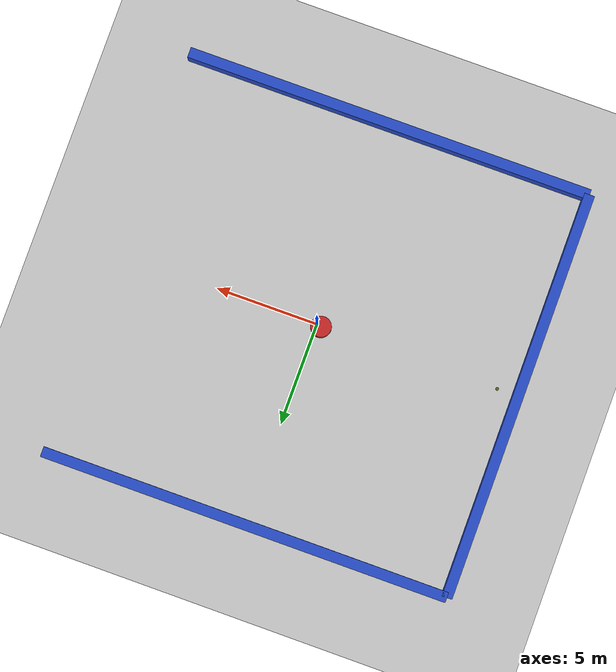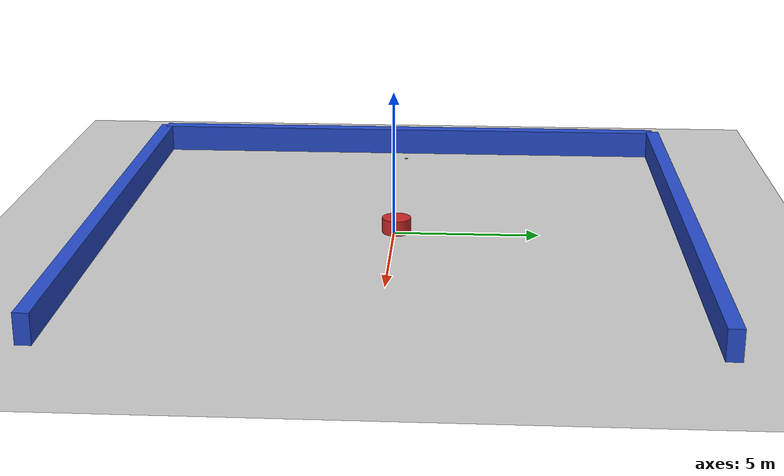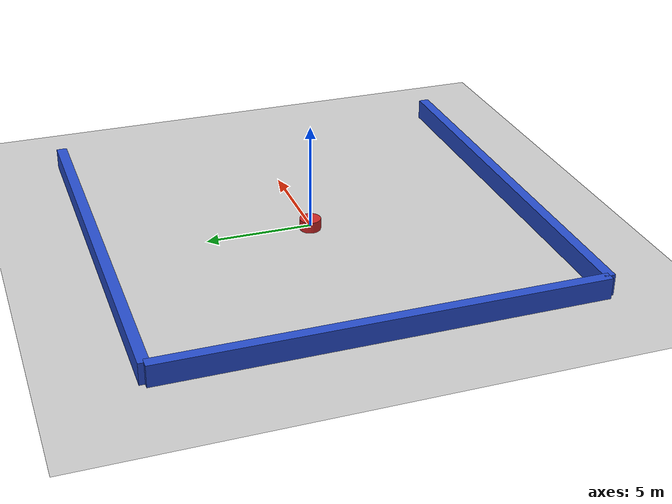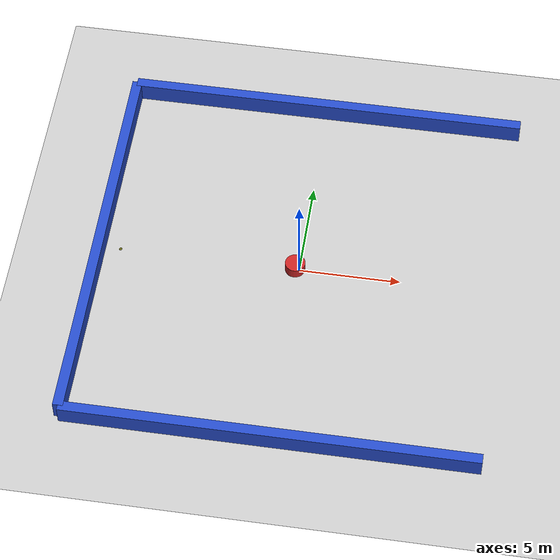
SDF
<sdf version="1.6">
   <world name="default">
      <include>
         <uri>model://ground_plane</uri>
      </include>
      <include>
         <uri>model://sun</uri>
      </include>

    <model name="mediumlibobs_51">
      <static>1</static>
      <pose frame="">-0.225000 0.075000 0.000000 0.000000 0.000000 0.000000</pose>
      <link name="link">
        <inertial>
          <mass>1</mass>
          <inertia>
            <ixx>0.145833</ixx>
            <ixy>0</ixy>
            <ixz>0</ixz>
            <iyy>0.145833</iyy>
            <iyz>0</iyz>
            <izz>0.125</izz>
          </inertia>
        </inertial>
        <collision name="collision">
           <geometry>
            <cylinder>
                <radius>0.5000</radius>
                 <length> 1 </length>
            </cylinder>
          </geometry>
           <surface>
            <contact>
              <ode />
            </contact>
            <bounce />
            <friction>
              <torsional>
                <ode />
              </torsional>
              <ode />
            </friction>
          </surface>
        </collision>
        <visual name="visual">
           <geometry>
            <cylinder>
                <radius>0.5000</radius>
                 <length> 1 </length>
            </cylinder>
          </geometry>
          <material>
            <script>
              <name>Gazebo/Red</name>
              <uri>file://media/materials/scripts/gazebo.material</uri>
            </script>
          </material>
        </visual>
        <self_collide>0</self_collide>
        <kinematic>0</kinematic>
        <gravity>1</gravity>
      </link>
      <plugin name="mediumlibobs_51" filename="mediumlibobs_51.so" />
    </model>

    <model name="hardlibobs_180">
      <static>1</static>
      <pose frame="">-0.225000 0.075000 0.000000 0.000000 0.000000 0.000000</pose>
      <link name="link">
        <inertial>
          <mass>1</mass>
          <inertia>
            <ixx>0.145833</ixx>
            <ixy>0</ixy>
            <ixz>0</ixz>
            <iyy>0.145833</iyy>
            <iyz>0</iyz>
            <izz>0.125</izz>
          </inertia>
        </inertial>
        <collision name="collision">
           <geometry>
            <cylinder>
                <radius>0.5000</radius>
                 <length> 1 </length>
            </cylinder>
          </geometry>
           <surface>
            <contact>
              <ode />
            </contact>
            <bounce />
            <friction>
              <torsional>
                <ode />
              </torsional>
              <ode />
            </friction>
          </surface>
        </collision>
        <visual name="visual">
           <geometry>
            <cylinder>
                <radius>0.5000</radius>
                 <length> 1 </length>
            </cylinder>
          </geometry>
          <material>
            <script>
              <name>Gazebo/Red</name>
              <uri>file://media/materials/scripts/gazebo.material</uri>
            </script>
          </material>
        </visual>
        <self_collide>0</self_collide>
        <kinematic>0</kinematic>
        <gravity>1</gravity>
      </link>
      <plugin name="hardlibobs_180" filename="hardlibobs_180.so" />
    </model>

    <model name="mediumlibobs_144">
      <static>1</static>
      <pose frame="">-0.225000 0.075000 0.000000 0.000000 0.000000 0.000000</pose>
      <link name="link">
        <inertial>
          <mass>1</mass>
          <inertia>
            <ixx>0.145833</ixx>
            <ixy>0</ixy>
            <ixz>0</ixz>
            <iyy>0.145833</iyy>
            <iyz>0</iyz>
            <izz>0.125</izz>
          </inertia>
        </inertial>
        <collision name="collision">
           <geometry>
            <cylinder>
                <radius>0.5000</radius>
                 <length> 1 </length>
            </cylinder>
          </geometry>
           <surface>
            <contact>
              <ode />
            </contact>
            <bounce />
            <friction>
              <torsional>
                <ode />
              </torsional>
              <ode />
            </friction>
          </surface>
        </collision>
        <visual name="visual">
           <geometry>
            <cylinder>
                <radius>0.5000</radius>
                 <length> 1 </length>
            </cylinder>
          </geometry>
          <material>
            <script>
              <name>Gazebo/Red</name>
              <uri>file://media/materials/scripts/gazebo.material</uri>
            </script>
          </material>
        </visual>
        <self_collide>0</self_collide>
        <kinematic>0</kinematic>
        <gravity>1</gravity>
      </link>
      <plugin name="mediumlibobs_144" filename="mediumlibobs_144.so" />
    </model>

    <model name="mediumlibobs_184">
      <static>1</static>
      <pose frame="">-0.225000 0.075000 0.000000 0.000000 0.000000 0.000000</pose>
      <link name="link">
        <inertial>
          <mass>1</mass>
          <inertia>
            <ixx>0.145833</ixx>
            <ixy>0</ixy>
            <ixz>0</ixz>
            <iyy>0.145833</iyy>
            <iyz>0</iyz>
            <izz>0.125</izz>
          </inertia>
        </inertial>
        <collision name="collision">
           <geometry>
            <cylinder>
                <radius>0.5000</radius>
                 <length> 1 </length>
            </cylinder>
          </geometry>
           <surface>
            <contact>
              <ode />
            </contact>
            <bounce />
            <friction>
              <torsional>
                <ode />
              </torsional>
              <ode />
            </friction>
          </surface>
        </collision>
        <visual name="visual">
           <geometry>
            <cylinder>
                <radius>0.5000</radius>
                 <length> 1 </length>
            </cylinder>
          </geometry>
          <material>
            <script>
              <name>Gazebo/Red</name>
              <uri>file://media/materials/scripts/gazebo.material</uri>
            </script>
          </material>
        </visual>
        <self_collide>0</self_collide>
        <kinematic>0</kinematic>
        <gravity>1</gravity>
      </link>
      <plugin name="mediumlibobs_184" filename="mediumlibobs_184.so" />
    </model>

    <model name="hardlibobs_151">
      <static>1</static>
      <pose frame="">-0.225000 0.075000 0.000000 0.000000 0.000000 0.000000</pose>
      <link name="link">
        <inertial>
          <mass>1</mass>
          <inertia>
            <ixx>0.145833</ixx>
            <ixy>0</ixy>
            <ixz>0</ixz>
            <iyy>0.145833</iyy>
            <iyz>0</iyz>
            <izz>0.125</izz>
          </inertia>
        </inertial>
        <collision name="collision">
           <geometry>
            <cylinder>
                <radius>0.5000</radius>
                 <length> 1 </length>
            </cylinder>
          </geometry>
           <surface>
            <contact>
              <ode />
            </contact>
            <bounce />
            <friction>
              <torsional>
                <ode />
              </torsional>
              <ode />
            </friction>
          </surface>
        </collision>
        <visual name="visual">
           <geometry>
            <cylinder>
                <radius>0.5000</radius>
                 <length> 1 </length>
            </cylinder>
          </geometry>
          <material>
            <script>
              <name>Gazebo/Red</name>
              <uri>file://media/materials/scripts/gazebo.material</uri>
            </script>
          </material>
        </visual>
        <self_collide>0</self_collide>
        <kinematic>0</kinematic>
        <gravity>1</gravity>
      </link>
      <plugin name="hardlibobs_151" filename="hardlibobs_151.so" />
    </model>

    <model name="mediumlibobs_130">
      <static>1</static>
      <pose frame="">-0.225000 0.075000 0.000000 0.000000 0.000000 0.000000</pose>
      <link name="link">
        <inertial>
          <mass>1</mass>
          <inertia>
            <ixx>0.145833</ixx>
            <ixy>0</ixy>
            <ixz>0</ixz>
            <iyy>0.145833</iyy>
            <iyz>0</iyz>
            <izz>0.125</izz>
          </inertia>
        </inertial>
        <collision name="collision">
           <geometry>
            <cylinder>
                <radius>0.5000</radius>
                 <length> 1 </length>
            </cylinder>
          </geometry>
           <surface>
            <contact>
              <ode />
            </contact>
            <bounce />
            <friction>
              <torsional>
                <ode />
              </torsional>
              <ode />
            </friction>
          </surface>
        </collision>
        <visual name="visual">
           <geometry>
            <cylinder>
                <radius>0.5000</radius>
                 <length> 1 </length>
            </cylinder>
          </geometry>
          <material>
            <script>
              <name>Gazebo/Red</name>
              <uri>file://media/materials/scripts/gazebo.material</uri>
            </script>
          </material>
        </visual>
        <self_collide>0</self_collide>
        <kinematic>0</kinematic>
        <gravity>1</gravity>
      </link>
      <plugin name="mediumlibobs_130" filename="mediumlibobs_130.so" />
    </model>

    <model name="mediumlibobs_185">
      <static>1</static>
      <pose frame="">-0.225000 0.075000 0.000000 0.000000 0.000000 0.000000</pose>
      <link name="link">
        <inertial>
          <mass>1</mass>
          <inertia>
            <ixx>0.145833</ixx>
            <ixy>0</ixy>
            <ixz>0</ixz>
            <iyy>0.145833</iyy>
            <iyz>0</iyz>
            <izz>0.125</izz>
          </inertia>
        </inertial>
        <collision name="collision">
           <geometry>
            <cylinder>
                <radius>0.5000</radius>
                 <length> 1 </length>
            </cylinder>
          </geometry>
           <surface>
            <contact>
              <ode />
            </contact>
            <bounce />
            <friction>
              <torsional>
                <ode />
              </torsional>
              <ode />
            </friction>
          </surface>
        </collision>
        <visual name="visual">
           <geometry>
            <cylinder>
                <radius>0.5000</radius>
                 <length> 1 </length>
            </cylinder>
          </geometry>
          <material>
            <script>
              <name>Gazebo/Red</name>
              <uri>file://media/materials/scripts/gazebo.material</uri>
            </script>
          </material>
        </visual>
        <self_collide>0</self_collide>
        <kinematic>0</kinematic>
        <gravity>1</gravity>
      </link>
      <plugin name="mediumlibobs_185" filename="mediumlibobs_185.so" />
    </model>

    <model name="hardlibobs_34">
      <static>1</static>
      <pose frame="">-0.225000 0.075000 0.000000 0.000000 0.000000 0.000000</pose>
      <link name="link">
        <inertial>
          <mass>1</mass>
          <inertia>
            <ixx>0.145833</ixx>
            <ixy>0</ixy>
            <ixz>0</ixz>
            <iyy>0.145833</iyy>
            <iyz>0</iyz>
            <izz>0.125</izz>
          </inertia>
        </inertial>
        <collision name="collision">
           <geometry>
            <cylinder>
                <radius>0.5000</radius>
                 <length> 1 </length>
            </cylinder>
          </geometry>
           <surface>
            <contact>
              <ode />
            </contact>
            <bounce />
            <friction>
              <torsional>
                <ode />
              </torsional>
              <ode />
            </friction>
          </surface>
        </collision>
        <visual name="visual">
           <geometry>
            <cylinder>
                <radius>0.5000</radius>
                 <length> 1 </length>
            </cylinder>
          </geometry>
          <material>
            <script>
              <name>Gazebo/Red</name>
              <uri>file://media/materials/scripts/gazebo.material</uri>
            </script>
          </material>
        </visual>
        <self_collide>0</self_collide>
        <kinematic>0</kinematic>
        <gravity>1</gravity>
      </link>
      <plugin name="hardlibobs_34" filename="hardlibobs_34.so" />
    </model>

    <model name="mediumlibobs_20">
      <static>1</static>
      <pose frame="">-0.225000 0.075000 0.000000 0.000000 0.000000 0.000000</pose>
      <link name="link">
        <inertial>
          <mass>1</mass>
          <inertia>
            <ixx>0.145833</ixx>
            <ixy>0</ixy>
            <ixz>0</ixz>
            <iyy>0.145833</iyy>
            <iyz>0</iyz>
            <izz>0.125</izz>
          </inertia>
        </inertial>
        <collision name="collision">
           <geometry>
            <cylinder>
                <radius>0.5000</radius>
                 <length> 1 </length>
            </cylinder>
          </geometry>
           <surface>
            <contact>
              <ode />
            </contact>
            <bounce />
            <friction>
              <torsional>
                <ode />
              </torsional>
              <ode />
            </friction>
          </surface>
        </collision>
        <visual name="visual">
           <geometry>
            <cylinder>
                <radius>0.5000</radius>
                 <length> 1 </length>
            </cylinder>
          </geometry>
          <material>
            <script>
              <name>Gazebo/Red</name>
              <uri>file://media/materials/scripts/gazebo.material</uri>
            </script>
          </material>
        </visual>
        <self_collide>0</self_collide>
        <kinematic>0</kinematic>
        <gravity>1</gravity>
      </link>
      <plugin name="mediumlibobs_20" filename="mediumlibobs_20.so" />
    </model>

    <model name="hardlibobs_181">
      <static>1</static>
      <pose frame="">-0.225000 0.075000 0.000000 0.000000 0.000000 0.000000</pose>
      <link name="link">
        <inertial>
          <mass>1</mass>
          <inertia>
            <ixx>0.145833</ixx>
            <ixy>0</ixy>
            <ixz>0</ixz>
            <iyy>0.145833</iyy>
            <iyz>0</iyz>
            <izz>0.125</izz>
          </inertia>
        </inertial>
        <collision name="collision">
           <geometry>
            <cylinder>
                <radius>0.5000</radius>
                 <length> 1 </length>
            </cylinder>
          </geometry>
           <surface>
            <contact>
              <ode />
            </contact>
            <bounce />
            <friction>
              <torsional>
                <ode />
              </torsional>
              <ode />
            </friction>
          </surface>
        </collision>
        <visual name="visual">
           <geometry>
            <cylinder>
                <radius>0.5000</radius>
                 <length> 1 </length>
            </cylinder>
          </geometry>
          <material>
            <script>
              <name>Gazebo/Red</name>
              <uri>file://media/materials/scripts/gazebo.material</uri>
            </script>
          </material>
        </visual>
        <self_collide>0</self_collide>
        <kinematic>0</kinematic>
        <gravity>1</gravity>
      </link>
      <plugin name="hardlibobs_181" filename="hardlibobs_181.so" />
    </model>

    <model name="mediumlibobs_159">
      <static>1</static>
      <pose frame="">-0.225000 0.075000 0.000000 0.000000 0.000000 0.000000</pose>
      <link name="link">
        <inertial>
          <mass>1</mass>
          <inertia>
            <ixx>0.145833</ixx>
            <ixy>0</ixy>
            <ixz>0</ixz>
            <iyy>0.145833</iyy>
            <iyz>0</iyz>
            <izz>0.125</izz>
          </inertia>
        </inertial>
        <collision name="collision">
           <geometry>
            <cylinder>
                <radius>0.5000</radius>
                 <length> 1 </length>
            </cylinder>
          </geometry>
           <surface>
            <contact>
              <ode />
            </contact>
            <bounce />
            <friction>
              <torsional>
                <ode />
              </torsional>
              <ode />
            </friction>
          </surface>
        </collision>
        <visual name="visual">
           <geometry>
            <cylinder>
                <radius>0.5000</radius>
                 <length> 1 </length>
            </cylinder>
          </geometry>
          <material>
            <script>
              <name>Gazebo/Red</name>
              <uri>file://media/materials/scripts/gazebo.material</uri>
            </script>
          </material>
        </visual>
        <self_collide>0</self_collide>
        <kinematic>0</kinematic>
        <gravity>1</gravity>
      </link>
      <plugin name="mediumlibobs_159" filename="mediumlibobs_159.so" />
    </model>

    <model name="hardlibobs_162">
      <static>1</static>
      <pose frame="">-0.225000 0.075000 0.000000 0.000000 0.000000 0.000000</pose>
      <link name="link">
        <inertial>
          <mass>1</mass>
          <inertia>
            <ixx>0.145833</ixx>
            <ixy>0</ixy>
            <ixz>0</ixz>
            <iyy>0.145833</iyy>
            <iyz>0</iyz>
            <izz>0.125</izz>
          </inertia>
        </inertial>
        <collision name="collision">
           <geometry>
            <cylinder>
                <radius>0.5000</radius>
                 <length> 1 </length>
            </cylinder>
          </geometry>
           <surface>
            <contact>
              <ode />
            </contact>
            <bounce />
            <friction>
              <torsional>
                <ode />
              </torsional>
              <ode />
            </friction>
          </surface>
        </collision>
        <visual name="visual">
           <geometry>
            <cylinder>
                <radius>0.5000</radius>
                 <length> 1 </length>
            </cylinder>
          </geometry>
          <material>
            <script>
              <name>Gazebo/Red</name>
              <uri>file://media/materials/scripts/gazebo.material</uri>
            </script>
          </material>
        </visual>
        <self_collide>0</self_collide>
        <kinematic>0</kinematic>
        <gravity>1</gravity>
      </link>
      <plugin name="hardlibobs_162" filename="hardlibobs_162.so" />
    </model>

    <model name="hardlibobs_163">
      <static>1</static>
      <pose frame="">-0.225000 0.075000 0.000000 0.000000 0.000000 0.000000</pose>
      <link name="link">
        <inertial>
          <mass>1</mass>
          <inertia>
            <ixx>0.145833</ixx>
            <ixy>0</ixy>
            <ixz>0</ixz>
            <iyy>0.145833</iyy>
            <iyz>0</iyz>
            <izz>0.125</izz>
          </inertia>
        </inertial>
        <collision name="collision">
           <geometry>
            <cylinder>
                <radius>0.5000</radius>
                 <length> 1 </length>
            </cylinder>
          </geometry>
           <surface>
            <contact>
              <ode />
            </contact>
            <bounce />
            <friction>
              <torsional>
                <ode />
              </torsional>
              <ode />
            </friction>
          </surface>
        </collision>
        <visual name="visual">
           <geometry>
            <cylinder>
                <radius>0.5000</radius>
                 <length> 1 </length>
            </cylinder>
          </geometry>
          <material>
            <script>
              <name>Gazebo/Red</name>
              <uri>file://media/materials/scripts/gazebo.material</uri>
            </script>
          </material>
        </visual>
        <self_collide>0</self_collide>
        <kinematic>0</kinematic>
        <gravity>1</gravity>
      </link>
      <plugin name="hardlibobs_163" filename="hardlibobs_163.so" />
    </model>

      <model name="back_wall">
      <static>1</static>\   <pose frame="">-10 0 .5 0 0 0</pose>        <link name="box_link">

	<collision name="collision">
            <geometry>
              <box>
                <size>.5 20 1</size>
              </box>
            </geometry>
           <surface>
            <contact>
              <ode />
            </contact>
            <bounce />
            <friction>
              <torsional>
                <ode />
              </torsional>
              <ode />
            </friction>
          </surface>
        </collision>

          <visual name="visual">
            <geometry>
              <box>
                <size>.5 20 1</size>
              </box>
            </geometry>
          <material>
                 <script>
                     <name>Gazebo/Blue</name>
                         <uri>file://media/materials/scripts/gazebo.material</uri>
                         </script>
                     </material>
          </visual>
        </link>
      </model>
      <model name="top_wall">
      <static>1</static>
       <pose frame="">0 10 .5 0 0 0</pose>        <link name="box_link">

	<collision name="collision">
           <geometry>
              <box>
                <size>20 .5 1</size>
              </box>
            </geometry>
           <surface>
            <contact>
              <ode />
            </contact>
            <bounce />
            <friction>
              <torsional>
                <ode />
              </torsional>
              <ode />
            </friction>
          </surface>
        </collision>
          <visual name="visual">
            <geometry>
              <box>
                <size>20 .5 1</size>
              </box>
            </geometry>
          <material>
                 <script>
                     <name>Gazebo/Blue</name>
                         <uri>file://media/materials/scripts/gazebo.material</uri>
                         </script>
                     </material>
          </visual>
        </link>
      </model>
      <model name="bottom_wall">
      <static>1</static>
       <pose frame="">0 -10 .5 0 0 0</pose>        <link name="box_link">
	<collision name="collision">
            <geometry>
              <box>
                <size>20 .5 1</size>
              </box>
            </geometry>
           <surface>
            <contact>
              <ode />
            </contact>
            <bounce />
            <friction>
              <torsional>
                <ode />
              </torsional>
              <ode />
            </friction>
          </surface>
        </collision>
          <visual name="visual">
            <geometry>
              <box>
                <size>20 .5 1</size>
              </box>
            </geometry>
          <material>
                 <script>
                     <name>Gazebo/Blue</name>
                         <uri>file://media/materials/scripts/gazebo.material</uri>
                         </script>
                     </material>
          </visual>
        </link>
      </model>
   <model name="goal"><static>1</static><pose frame="">-9.00000 0.000000 0.000000 0.000000 0.000000 0.000000</pose><link name="link"><inertial><mass>1</mass><inertia><ixx>0.145833</ixx><ixy>0</ixy><ixz>0</ixz><iyy>0.145833</iyy><iyz>0</iyz><izz>0.125</izz></inertia></inertial><collision name="collision"><geometry><cylinder><radius>0.075000</radius><length>1</length></cylinder></geometry><max_contacts>10</max_contacts><surface><contact><ode /></contact><bounce /><friction><torsional><ode /></torsional><ode /></friction></surface></collision><visual name="visual"><geometry><cylinder><radius>0.075000</radius><length>0.001</length></cylinder></geometry><material><ambient>0 1 0 1</ambient><diffuse>0.4 0.4 0.1 1</diffuse></material><material><script><name>Gazebo/Grey</name><uri>file://media/materials/scripts/gazebo.material</uri></script></material></visual><self_collide>0</self_collide><kinematic>0</kinematic><gravity>0</gravity></link></model></world>
</sdf>
